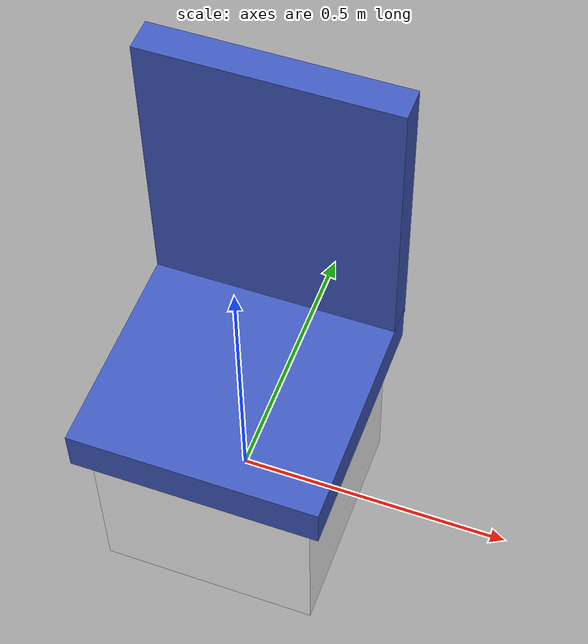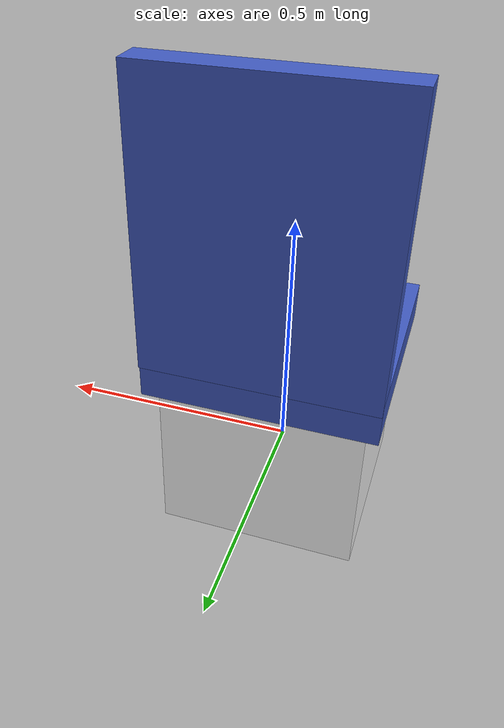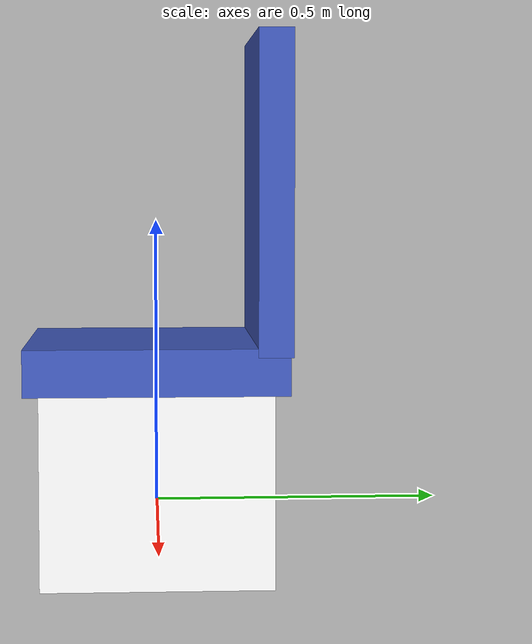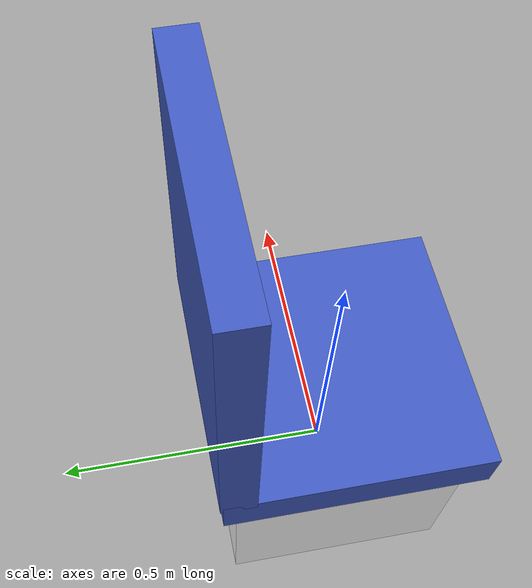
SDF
<?xml version="1.0"?>
<sdf version="1.8">
  <model name="simple_chair">
    <static>true</static>
    <link name="link">
      <pose>0 0 0.25 0 0 0</pose>
      <collision name="seat_col">
        <geometry><box><size>0.45 0.45 0.08</size></box></geometry>
      </collision>
      <visual name="seat">
        <cast_shadows>false</cast_shadows>
        <geometry><box><size>0.45 0.45 0.08</size></box></geometry>
        <material>
          <ambient>0.2 0.25 0.55 1</ambient>
          <diffuse>0.25 0.35 0.75 1</diffuse>
        </material>
      </visual>
      <visual name="back">
        <cast_shadows>false</cast_shadows>
        <pose>0 0.2 0.3 0 0 0</pose>
        <geometry><box><size>0.45 0.06 0.55</size></box></geometry>
        <material>
          <ambient>0.2 0.25 0.55 1</ambient>
          <diffuse>0.25 0.35 0.75 1</diffuse>
        </material>
      </visual>
      <visual name="leg">
        <cast_shadows>false</cast_shadows>
        <pose>0 0 -0.2 0 0 0</pose>
        <geometry><box><size>0.4 0.4 0.35</size></box></geometry>
        <material>
          <ambient>0.35 0.25 0.15 1</ambient>
          <diffuse>1 1 1 1</diffuse>
          <pbr><metal><albedo_map>model://textures/wood.png</albedo_map></metal></pbr>
        </material>
      </visual>
    </link>
  </model>
</sdf>
